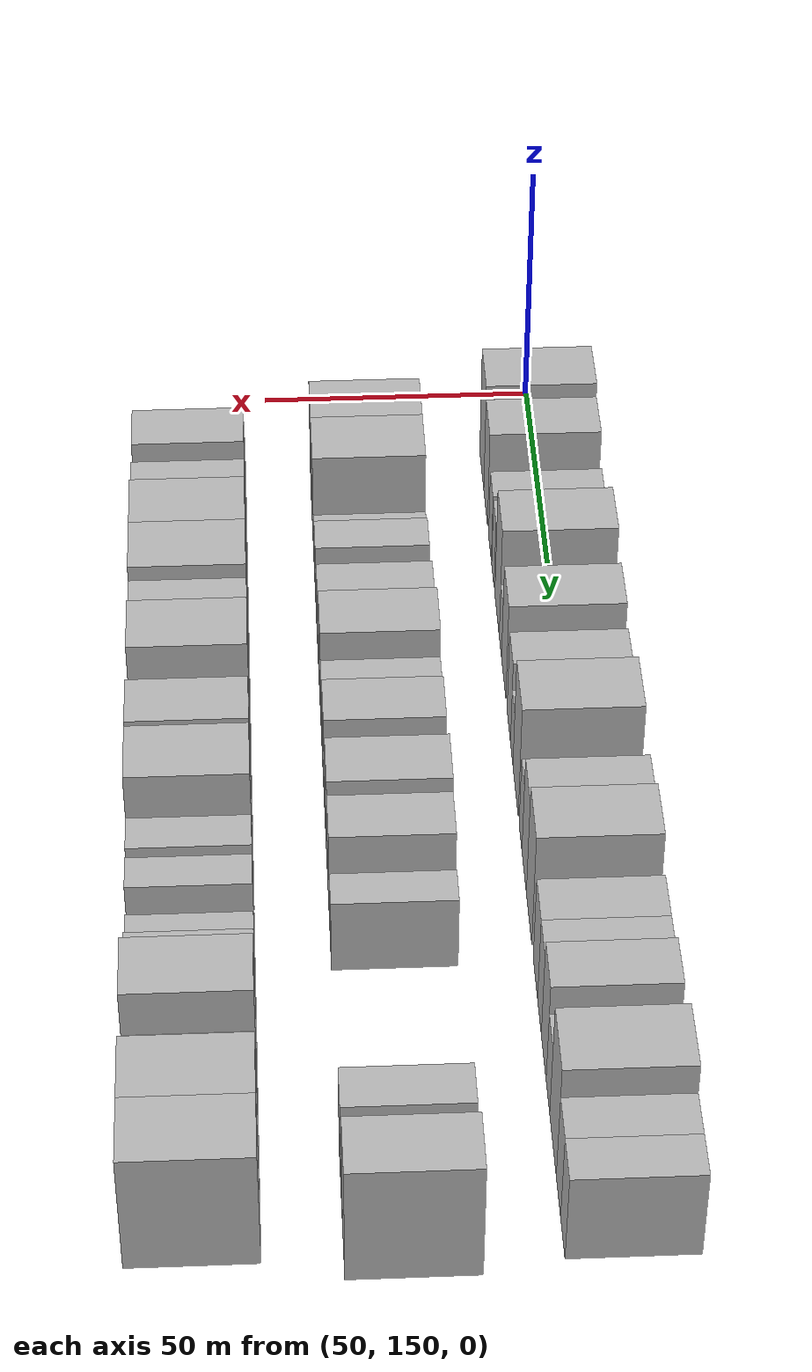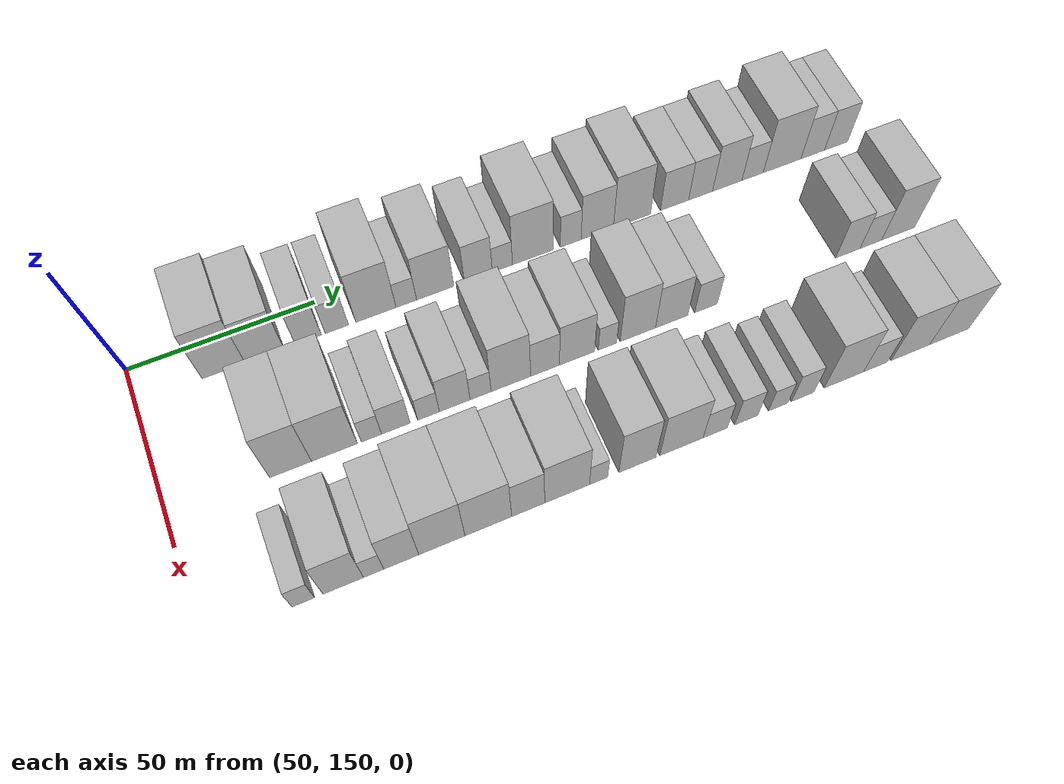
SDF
<sdf version="1.6">
 <world name="default">
  <model name="building_58">
   <static>1</static>
   <pose>50.0000 172.9131 0 0.000000 0.000000 0.000000</pose>
   <link name="link">
    <pose>0 0 12.00 0 0 0</pose>
    <collision name="collision"><geometry><box><size>20.0000 11.2285 24.0000</size></box></geometry></collision>
    <visual name="visual">
     <cast_shadows>0</cast_shadows>
     <geometry><box><size>20.0000 11.2285 24.0000</size></box></geometry>
     <material>
      <script>
       <uri>model://HANNAS_wall/materials/scripts</uri>
       <uri>model://HANNAS_wall/materials/textures</uri>
       <name>vrc/HANNAS_wall</name>
      </script>
     </material>
    </visual>
   </link>
  </model>
  <model name="building_59">
   <static>1</static>
   <pose>50.0000 183.6783 0 0.000000 0.000000 0.000000</pose>
   <link name="link">
    <pose>0 0 10.50 0 0 0</pose>
    <collision name="collision"><geometry><box><size>20.0000 10.3019 21.0000</size></box></geometry></collision>
    <visual name="visual">
     <cast_shadows>0</cast_shadows>
     <geometry><box><size>20.0000 10.3019 21.0000</size></box></geometry>
     <material>
      <script>
       <uri>model://HANNAS_wall/materials/scripts</uri>
       <uri>model://HANNAS_wall/materials/textures</uri>
       <name>vrc/HANNAS_wall</name>
      </script>
     </material>
    </visual>
   </link>
  </model>
  <model name="building_60">
   <static>1</static>
   <pose>50.0000 195.3477 0 0.000000 0.000000 0.000000</pose>
   <link name="link">
    <pose>0 0 7.50 0 0 0</pose>
    <collision name="collision"><geometry><box><size>20.0000 7.0370 15.0000</size></box></geometry></collision>
    <visual name="visual">
     <cast_shadows>0</cast_shadows>
     <geometry><box><size>20.0000 7.0370 15.0000</size></box></geometry>
     <material>
      <script>
       <uri>model://HANNAS_wall/materials/scripts</uri>
       <uri>model://HANNAS_wall/materials/textures</uri>
       <name>vrc/HANNAS_wall</name>
      </script>
     </material>
    </visual>
   </link>
  </model>
  <model name="building_61">
   <static>1</static>
   <pose>50.0000 203.0328 0 0.000000 0.000000 0.000000</pose>
   <link name="link">
    <pose>0 0 7.50 0 0 0</pose>
    <collision name="collision"><geometry><box><size>20.0000 6.3333 15.0000</size></box></geometry></collision>
    <visual name="visual">
     <cast_shadows>0</cast_shadows>
     <geometry><box><size>20.0000 6.3333 15.0000</size></box></geometry>
     <material>
      <script>
       <uri>model://HANNAS_wall/materials/scripts</uri>
       <uri>model://HANNAS_wall/materials/textures</uri>
       <name>vrc/HANNAS_wall</name>
      </script>
     </material>
    </visual>
   </link>
  </model>
  <model name="building_62">
   <static>1</static>
   <pose>50.0000 213.7313 0 0.000000 0.000000 0.000000</pose>
   <link name="link">
    <pose>0 0 12.00 0 0 0</pose>
    <collision name="collision"><geometry><box><size>20.0000 11.0636 24.0000</size></box></geometry></collision>
    <visual name="visual">
     <cast_shadows>0</cast_shadows>
     <geometry><box><size>20.0000 11.0636 24.0000</size></box></geometry>
     <material>
      <script>
       <uri>model://HANNAS_wall/materials/scripts</uri>
       <uri>model://HANNAS_wall/materials/textures</uri>
       <name>vrc/HANNAS_wall</name>
      </script>
     </material>
    </visual>
   </link>
  </model>
  <model name="building_63">
   <static>1</static>
   <pose>50.0000 222.1145 0 0.000000 0.000000 0.000000</pose>
   <link name="link">
    <pose>0 0 6.00 0 0 0</pose>
    <collision name="collision"><geometry><box><size>20.0000 5.7027 12.0000</size></box></geometry></collision>
    <visual name="visual">
     <cast_shadows>0</cast_shadows>
     <geometry><box><size>20.0000 5.7027 12.0000</size></box></geometry>
     <material>
      <script>
       <uri>model://HANNAS_wall/materials/scripts</uri>
       <uri>model://HANNAS_wall/materials/textures</uri>
       <name>vrc/HANNAS_wall</name>
      </script>
     </material>
    </visual>
   </link>
  </model>
  <model name="building_64">
   <static>1</static>
   <pose>50.0000 230.1820 0 0.000000 0.000000 0.000000</pose>
   <link name="link">
    <pose>0 0 10.50 0 0 0</pose>
    <collision name="collision"><geometry><box><size>20.0000 10.4323 21.0000</size></box></geometry></collision>
    <visual name="visual">
     <cast_shadows>0</cast_shadows>
     <geometry><box><size>20.0000 10.4323 21.0000</size></box></geometry>
     <material>
      <script>
       <uri>model://HANNAS_wall/materials/scripts</uri>
       <uri>model://HANNAS_wall/materials/textures</uri>
       <name>vrc/HANNAS_wall</name>
      </script>
     </material>
    </visual>
   </link>
  </model>
  <model name="building_65">
   <static>1</static>
   <pose>50.0000 242.3887 0 0.000000 0.000000 0.000000</pose>
   <link name="link">
    <pose>0 0 9.00 0 0 0</pose>
    <collision name="collision"><geometry><box><size>20.0000 7.9812 18.0000</size></box></geometry></collision>
    <visual name="visual">
     <cast_shadows>0</cast_shadows>
     <geometry><box><size>20.0000 7.9812 18.0000</size></box></geometry>
     <material>
      <script>
       <uri>model://HANNAS_wall/materials/scripts</uri>
       <uri>model://HANNAS_wall/materials/textures</uri>
       <name>vrc/HANNAS_wall</name>
      </script>
     </material>
    </visual>
   </link>
  </model>
  <model name="building_66">
   <static>1</static>
   <pose>50.0000 249.2571 0 0.000000 0.000000 0.000000</pose>
   <link name="link">
    <pose>0 0 6.00 0 0 0</pose>
    <collision name="collision"><geometry><box><size>20.0000 5.7558 12.0000</size></box></geometry></collision>
    <visual name="visual">
     <cast_shadows>0</cast_shadows>
     <geometry><box><size>20.0000 5.7558 12.0000</size></box></geometry>
     <material>
      <script>
       <uri>model://HANNAS_wall/materials/scripts</uri>
       <uri>model://HANNAS_wall/materials/textures</uri>
       <name>vrc/HANNAS_wall</name>
      </script>
     </material>
    </visual>
   </link>
  </model>
  <model name="building_67">
   <static>1</static>
   <pose>50.0000 258.0825 0 0.000000 0.000000 0.000000</pose>
   <link name="link">
    <pose>0 0 12.00 0 0 0</pose>
    <collision name="collision"><geometry><box><size>20.0000 11.8950 24.0000</size></box></geometry></collision>
    <visual name="visual">
     <cast_shadows>0</cast_shadows>
     <geometry><box><size>20.0000 11.8950 24.0000</size></box></geometry>
     <material>
      <script>
       <uri>model://HANNAS_wall/materials/scripts</uri>
       <uri>model://HANNAS_wall/materials/textures</uri>
       <name>vrc/HANNAS_wall</name>
      </script>
     </material>
    </visual>
   </link>
  </model>
  <model name="building_68">
   <static>1</static>
   <pose>50.0000 269.0869 0 0.000000 0.000000 0.000000</pose>
   <link name="link">
    <pose>0 0 7.50 0 0 0</pose>
    <collision name="collision"><geometry><box><size>20.0000 6.1139 15.0000</size></box></geometry></collision>
    <visual name="visual">
     <cast_shadows>0</cast_shadows>
     <geometry><box><size>20.0000 6.1139 15.0000</size></box></geometry>
     <material>
      <script>
       <uri>model://HANNAS_wall/materials/scripts</uri>
       <uri>model://HANNAS_wall/materials/textures</uri>
       <name>vrc/HANNAS_wall</name>
      </script>
     </material>
    </visual>
   </link>
  </model>
  <model name="building_69">
   <static>1</static>
   <pose>50.0000 276.9377 0 0.000000 0.000000 0.000000</pose>
   <link name="link">
    <pose>0 0 10.50 0 0 0</pose>
    <collision name="collision"><geometry><box><size>20.0000 9.5877 21.0000</size></box></geometry></collision>
    <visual name="visual">
     <cast_shadows>0</cast_shadows>
     <geometry><box><size>20.0000 9.5877 21.0000</size></box></geometry>
     <material>
      <script>
       <uri>model://HANNAS_wall/materials/scripts</uri>
       <uri>model://HANNAS_wall/materials/textures</uri>
       <name>vrc/HANNAS_wall</name>
      </script>
     </material>
    </visual>
   </link>
  </model>
  <model name="building_70">
   <static>1</static>
   <pose>50.0000 287.3163 0 0.000000 0.000000 0.000000</pose>
   <link name="link">
    <pose>0 0 12.00 0 0 0</pose>
    <collision name="collision"><geometry><box><size>20.0000 11.1694 24.0000</size></box></geometry></collision>
    <visual name="visual">
     <cast_shadows>0</cast_shadows>
     <geometry><box><size>20.0000 11.1694 24.0000</size></box></geometry>
     <material>
      <script>
       <uri>model://HANNAS_wall/materials/scripts</uri>
       <uri>model://HANNAS_wall/materials/textures</uri>
       <name>vrc/HANNAS_wall</name>
      </script>
     </material>
    </visual>
   </link>
  </model>
  <model name="building_71">
   <static>1</static>
   <pose>50.0000 300.2091 0 0.000000 0.000000 0.000000</pose>
   <link name="link">
    <pose>0 0 9.00 0 0 0</pose>
    <collision name="collision"><geometry><box><size>20.0000 8.6162 18.0000</size></box></geometry></collision>
    <visual name="visual">
     <cast_shadows>0</cast_shadows>
     <geometry><box><size>20.0000 8.6162 18.0000</size></box></geometry>
     <material>
      <script>
       <uri>model://HANNAS_wall/materials/scripts</uri>
       <uri>model://HANNAS_wall/materials/textures</uri>
       <name>vrc/HANNAS_wall</name>
      </script>
     </material>
    </visual>
   </link>
  </model>
  <model name="building_72">
   <static>1</static>
   <pose>50.0000 308.1991 0 0.000000 0.000000 0.000000</pose>
   <link name="link">
    <pose>0 0 9.00 0 0 0</pose>
    <collision name="collision"><geometry><box><size>20.0000 7.3640 18.0000</size></box></geometry></collision>
    <visual name="visual">
     <cast_shadows>0</cast_shadows>
     <geometry><box><size>20.0000 7.3640 18.0000</size></box></geometry>
     <material>
      <script>
       <uri>model://HANNAS_wall/materials/scripts</uri>
       <uri>model://HANNAS_wall/materials/textures</uri>
       <name>vrc/HANNAS_wall</name>
      </script>
     </material>
    </visual>
   </link>
  </model>
  <model name="building_73">
   <static>1</static>
   <pose>50.0000 316.4513 0 0.000000 0.000000 0.000000</pose>
   <link name="link">
    <pose>0 0 10.50 0 0 0</pose>
    <collision name="collision"><geometry><box><size>20.0000 9.1403 21.0000</size></box></geometry></collision>
    <visual name="visual">
     <cast_shadows>0</cast_shadows>
     <geometry><box><size>20.0000 9.1403 21.0000</size></box></geometry>
     <material>
      <script>
       <uri>model://HANNAS_wall/materials/scripts</uri>
       <uri>model://HANNAS_wall/materials/textures</uri>
       <name>vrc/HANNAS_wall</name>
      </script>
     </material>
    </visual>
   </link>
  </model>
  <model name="building_74">
   <static>1</static>
   <pose>50.0000 324.3762 0 0.000000 0.000000 0.000000</pose>
   <link name="link">
    <pose>0 0 7.50 0 0 0</pose>
    <collision name="collision"><geometry><box><size>20.0000 6.7095 15.0000</size></box></geometry></collision>
    <visual name="visual">
     <cast_shadows>0</cast_shadows>
     <geometry><box><size>20.0000 6.7095 15.0000</size></box></geometry>
     <material>
      <script>
       <uri>model://HANNAS_wall/materials/scripts</uri>
       <uri>model://HANNAS_wall/materials/textures</uri>
       <name>vrc/HANNAS_wall</name>
      </script>
     </material>
    </visual>
   </link>
  </model>
  <model name="building_75">
   <static>1</static>
   <pose>50.0000 333.7004 0 0.000000 0.000000 0.000000</pose>
   <link name="link">
    <pose>0 0 12.00 0 0 0</pose>
    <collision name="collision"><geometry><box><size>20.0000 11.9389 24.0000</size></box></geometry></collision>
    <visual name="visual">
     <cast_shadows>0</cast_shadows>
     <geometry><box><size>20.0000 11.9389 24.0000</size></box></geometry>
     <material>
      <script>
       <uri>model://HANNAS_wall/materials/scripts</uri>
       <uri>model://HANNAS_wall/materials/textures</uri>
       <name>vrc/HANNAS_wall</name>
      </script>
     </material>
    </visual>
   </link>
  </model>
  <model name="building_76">
   <static>1</static>
   <pose>50.0000 343.4634 0 0.000000 0.000000 0.000000</pose>
   <link name="link">
    <pose>0 0 9.00 0 0 0</pose>
    <collision name="collision"><geometry><box><size>20.0000 7.5872 18.0000</size></box></geometry></collision>
    <visual name="visual">
     <cast_shadows>0</cast_shadows>
     <geometry><box><size>20.0000 7.5872 18.0000</size></box></geometry>
     <material>
      <script>
       <uri>model://HANNAS_wall/materials/scripts</uri>
       <uri>model://HANNAS_wall/materials/textures</uri>
       <name>vrc/HANNAS_wall</name>
      </script>
     </material>
    </visual>
   </link>
  </model>
  <model name="building_77">
   <static>1</static>
   <pose>50.0000 351.0186 0 0.000000 0.000000 0.000000</pose>
   <link name="link">
    <pose>0 0 9.00 0 0 0</pose>
    <collision name="collision"><geometry><box><size>20.0000 7.5232 18.0000</size></box></geometry></collision>
    <visual name="visual">
     <cast_shadows>0</cast_shadows>
     <geometry><box><size>20.0000 7.5232 18.0000</size></box></geometry>
     <material>
      <script>
       <uri>model://HANNAS_wall/materials/scripts</uri>
       <uri>model://HANNAS_wall/materials/textures</uri>
       <name>vrc/HANNAS_wall</name>
      </script>
     </material>
    </visual>
   </link>
  </model>
  <model name="building_132">
   <static>1</static>
   <pose>82.0000 180.8640 0 0.000000 0.000000 0.000000</pose>
   <link name="link">
    <pose>0 0 12.00 0 0 0</pose>
    <collision name="collision"><geometry><box><size>20.0000 10.5958 24.0000</size></box></geometry></collision>
    <visual name="visual">
     <cast_shadows>0</cast_shadows>
     <geometry><box><size>20.0000 10.5958 24.0000</size></box></geometry>
     <material>
      <script>
       <uri>model://HANNAS_wall/materials/scripts</uri>
       <uri>model://HANNAS_wall/materials/textures</uri>
       <name>vrc/HANNAS_wall</name>
      </script>
     </material>
    </visual>
   </link>
  </model>
  <model name="building_133">
   <static>1</static>
   <pose>82.0000 192.0519 0 0.000000 0.000000 0.000000</pose>
   <link name="link">
    <pose>0 0 12.00 0 0 0</pose>
    <collision name="collision"><geometry><box><size>20.0000 11.7800 24.0000</size></box></geometry></collision>
    <visual name="visual">
     <cast_shadows>0</cast_shadows>
     <geometry><box><size>20.0000 11.7800 24.0000</size></box></geometry>
     <material>
      <script>
       <uri>model://HANNAS_wall/materials/scripts</uri>
       <uri>model://HANNAS_wall/materials/textures</uri>
       <name>vrc/HANNAS_wall</name>
      </script>
     </material>
    </visual>
   </link>
  </model>
  <model name="building_134">
   <static>1</static>
   <pose>82.0000 201.5853 0 0.000000 0.000000 0.000000</pose>
   <link name="link">
    <pose>0 0 6.00 0 0 0</pose>
    <collision name="collision"><geometry><box><size>20.0000 5.2868 12.0000</size></box></geometry></collision>
    <visual name="visual">
     <cast_shadows>0</cast_shadows>
     <geometry><box><size>20.0000 5.2868 12.0000</size></box></geometry>
     <material>
      <script>
       <uri>model://HANNAS_wall/materials/scripts</uri>
       <uri>model://HANNAS_wall/materials/textures</uri>
       <name>vrc/HANNAS_wall</name>
      </script>
     </material>
    </visual>
   </link>
  </model>
  <model name="building_135">
   <static>1</static>
   <pose>82.0000 207.9541 0 0.000000 0.000000 0.000000</pose>
   <link name="link">
    <pose>0 0 7.50 0 0 0</pose>
    <collision name="collision"><geometry><box><size>20.0000 7.4506 15.0000</size></box></geometry></collision>
    <visual name="visual">
     <cast_shadows>0</cast_shadows>
     <geometry><box><size>20.0000 7.4506 15.0000</size></box></geometry>
     <material>
      <script>
       <uri>model://HANNAS_wall/materials/scripts</uri>
       <uri>model://HANNAS_wall/materials/textures</uri>
       <name>vrc/HANNAS_wall</name>
      </script>
     </material>
    </visual>
   </link>
  </model>
  <model name="building_136">
   <static>1</static>
   <pose>82.0000 216.5511 0 0.000000 0.000000 0.000000</pose>
   <link name="link">
    <pose>0 0 6.00 0 0 0</pose>
    <collision name="collision"><geometry><box><size>20.0000 5.7436 12.0000</size></box></geometry></collision>
    <visual name="visual">
     <cast_shadows>0</cast_shadows>
     <geometry><box><size>20.0000 5.7436 12.0000</size></box></geometry>
     <material>
      <script>
       <uri>model://HANNAS_wall/materials/scripts</uri>
       <uri>model://HANNAS_wall/materials/textures</uri>
       <name>vrc/HANNAS_wall</name>
      </script>
     </material>
    </visual>
   </link>
  </model>
  <model name="building_137">
   <static>1</static>
   <pose>82.0000 223.5394 0 0.000000 0.000000 0.000000</pose>
   <link name="link">
    <pose>0 0 9.00 0 0 0</pose>
    <collision name="collision"><geometry><box><size>20.0000 8.2330 18.0000</size></box></geometry></collision>
    <visual name="visual">
     <cast_shadows>0</cast_shadows>
     <geometry><box><size>20.0000 8.2330 18.0000</size></box></geometry>
     <material>
      <script>
       <uri>model://HANNAS_wall/materials/scripts</uri>
       <uri>model://HANNAS_wall/materials/textures</uri>
       <name>vrc/HANNAS_wall</name>
      </script>
     </material>
    </visual>
   </link>
  </model>
  <model name="building_138">
   <static>1</static>
   <pose>82.0000 230.4822 0 0.000000 0.000000 0.000000</pose>
   <link name="link">
    <pose>0 0 6.00 0 0 0</pose>
    <collision name="collision"><geometry><box><size>20.0000 5.6526 12.0000</size></box></geometry></collision>
    <visual name="visual">
     <cast_shadows>0</cast_shadows>
     <geometry><box><size>20.0000 5.6526 12.0000</size></box></geometry>
     <material>
      <script>
       <uri>model://HANNAS_wall/materials/scripts</uri>
       <uri>model://HANNAS_wall/materials/textures</uri>
       <name>vrc/HANNAS_wall</name>
      </script>
     </material>
    </visual>
   </link>
  </model>
  <model name="building_139">
   <static>1</static>
   <pose>82.0000 238.6883 0 0.000000 0.000000 0.000000</pose>
   <link name="link">
    <pose>0 0 12.00 0 0 0</pose>
    <collision name="collision"><geometry><box><size>20.0000 10.7597 24.0000</size></box></geometry></collision>
    <visual name="visual">
     <cast_shadows>0</cast_shadows>
     <geometry><box><size>20.0000 10.7597 24.0000</size></box></geometry>
     <material>
      <script>
       <uri>model://HANNAS_wall/materials/scripts</uri>
       <uri>model://HANNAS_wall/materials/textures</uri>
       <name>vrc/HANNAS_wall</name>
      </script>
     </material>
    </visual>
   </link>
  </model>
  <model name="building_140">
   <static>1</static>
   <pose>82.0000 248.0522 0 0.000000 0.000000 0.000000</pose>
   <link name="link">
    <pose>0 0 9.00 0 0 0</pose>
    <collision name="collision"><geometry><box><size>20.0000 7.9680 18.0000</size></box></geometry></collision>
    <visual name="visual">
     <cast_shadows>0</cast_shadows>
     <geometry><box><size>20.0000 7.9680 18.0000</size></box></geometry>
     <material>
      <script>
       <uri>model://HANNAS_wall/materials/scripts</uri>
       <uri>model://HANNAS_wall/materials/textures</uri>
       <name>vrc/HANNAS_wall</name>
      </script>
     </material>
    </visual>
   </link>
  </model>
  <model name="building_141">
   <static>1</static>
   <pose>82.0000 256.9384 0 0.000000 0.000000 0.000000</pose>
   <link name="link">
    <pose>0 0 10.50 0 0 0</pose>
    <collision name="collision"><geometry><box><size>20.0000 9.8046 21.0000</size></box></geometry></collision>
    <visual name="visual">
     <cast_shadows>0</cast_shadows>
     <geometry><box><size>20.0000 9.8046 21.0000</size></box></geometry>
     <material>
      <script>
       <uri>model://HANNAS_wall/materials/scripts</uri>
       <uri>model://HANNAS_wall/materials/textures</uri>
       <name>vrc/HANNAS_wall</name>
      </script>
     </material>
    </visual>
   </link>
  </model>
  <model name="building_142">
   <static>1</static>
   <pose>82.0000 265.4273 0 0.000000 0.000000 0.000000</pose>
   <link name="link">
    <pose>0 0 6.00 0 0 0</pose>
    <collision name="collision"><geometry><box><size>20.0000 5.1731 12.0000</size></box></geometry></collision>
    <visual name="visual">
     <cast_shadows>0</cast_shadows>
     <geometry><box><size>20.0000 5.1731 12.0000</size></box></geometry>
     <material>
      <script>
       <uri>model://HANNAS_wall/materials/scripts</uri>
       <uri>model://HANNAS_wall/materials/textures</uri>
       <name>vrc/HANNAS_wall</name>
      </script>
     </material>
    </visual>
   </link>
  </model>
  <model name="building_143">
   <static>1</static>
   <pose>82.0000 274.0516 0 0.000000 0.000000 0.000000</pose>
   <link name="link">
    <pose>0 0 12.00 0 0 0</pose>
    <collision name="collision"><geometry><box><size>20.0000 10.0757 24.0000</size></box></geometry></collision>
    <visual name="visual">
     <cast_shadows>0</cast_shadows>
     <geometry><box><size>20.0000 10.0757 24.0000</size></box></geometry>
     <material>
      <script>
       <uri>model://HANNAS_wall/materials/scripts</uri>
       <uri>model://HANNAS_wall/materials/textures</uri>
       <name>vrc/HANNAS_wall</name>
      </script>
     </material>
    </visual>
   </link>
  </model>
  <model name="building_144">
   <static>1</static>
   <pose>82.0000 283.7586 0 0.000000 0.000000 0.000000</pose>
   <link name="link">
    <pose>0 0 10.50 0 0 0</pose>
    <collision name="collision"><geometry><box><size>20.0000 9.3383 21.0000</size></box></geometry></collision>
    <visual name="visual">
     <cast_shadows>0</cast_shadows>
     <geometry><box><size>20.0000 9.3383 21.0000</size></box></geometry>
     <material>
      <script>
       <uri>model://HANNAS_wall/materials/scripts</uri>
       <uri>model://HANNAS_wall/materials/textures</uri>
       <name>vrc/HANNAS_wall</name>
      </script>
     </material>
    </visual>
   </link>
  </model>
  <model name="building_145">
   <static>1</static>
   <pose>82.0000 293.7158 0 0.000000 0.000000 0.000000</pose>
   <link name="link">
    <pose>0 0 7.50 0 0 0</pose>
    <collision name="collision"><geometry><box><size>20.0000 6.5761 15.0000</size></box></geometry></collision>
    <visual name="visual">
     <cast_shadows>0</cast_shadows>
     <geometry><box><size>20.0000 6.5761 15.0000</size></box></geometry>
     <material>
      <script>
       <uri>model://HANNAS_wall/materials/scripts</uri>
       <uri>model://HANNAS_wall/materials/textures</uri>
       <name>vrc/HANNAS_wall</name>
      </script>
     </material>
    </visual>
   </link>
  </model>
  <model name="building_146">
   <static>1</static>
   <pose>82.0000 336.3327 0 0.000000 0.000000 0.000000</pose>
   <link name="link">
    <pose>0 0 9.00 0 0 0</pose>
    <collision name="collision"><geometry><box><size>20.0000 7.5526 18.0000</size></box></geometry></collision>
    <visual name="visual">
     <cast_shadows>0</cast_shadows>
     <geometry><box><size>20.0000 7.5526 18.0000</size></box></geometry>
     <material>
      <script>
       <uri>model://HANNAS_wall/materials/scripts</uri>
       <uri>model://HANNAS_wall/materials/textures</uri>
       <name>vrc/HANNAS_wall</name>
      </script>
     </material>
    </visual>
   </link>
  </model>
  <model name="building_147">
   <static>1</static>
   <pose>82.0000 343.4468 0 0.000000 0.000000 0.000000</pose>
   <link name="link">
    <pose>0 0 7.50 0 0 0</pose>
    <collision name="collision"><geometry><box><size>20.0000 6.6756 15.0000</size></box></geometry></collision>
    <visual name="visual">
     <cast_shadows>0</cast_shadows>
     <geometry><box><size>20.0000 6.6756 15.0000</size></box></geometry>
     <material>
      <script>
       <uri>model://HANNAS_wall/materials/scripts</uri>
       <uri>model://HANNAS_wall/materials/textures</uri>
       <name>vrc/HANNAS_wall</name>
      </script>
     </material>
    </visual>
   </link>
  </model>
  <model name="building_148">
   <static>1</static>
   <pose>82.0000 351.9427 0 0.000000 0.000000 0.000000</pose>
   <link name="link">
    <pose>0 0 12.00 0 0 0</pose>
    <collision name="collision"><geometry><box><size>20.0000 10.3162 24.0000</size></box></geometry></collision>
    <visual name="visual">
     <cast_shadows>0</cast_shadows>
     <geometry><box><size>20.0000 10.3162 24.0000</size></box></geometry>
     <material>
      <script>
       <uri>model://HANNAS_wall/materials/scripts</uri>
       <uri>model://HANNAS_wall/materials/textures</uri>
       <name>vrc/HANNAS_wall</name>
      </script>
     </material>
    </visual>
   </link>
  </model>
  <model name="building_207">
   <static>1</static>
   <pose>114.0000 174.1930 0 0.000000 0.000000 0.000000</pose>
   <link name="link">
    <pose>0 0 6.00 0 0 0</pose>
    <collision name="collision"><geometry><box><size>20.0000 5.4032 12.0000</size></box></geometry></collision>
    <visual name="visual">
     <cast_shadows>0</cast_shadows>
     <geometry><box><size>20.0000 5.4032 12.0000</size></box></geometry>
     <material>
      <script>
       <uri>model://HANNAS_wall/materials/scripts</uri>
       <uri>model://HANNAS_wall/materials/textures</uri>
       <name>vrc/HANNAS_wall</name>
      </script>
     </material>
    </visual>
   </link>
  </model>
  <model name="building_208">
   <static>1</static>
   <pose>114.0000 183.8179 0 0.000000 0.000000 0.000000</pose>
   <link name="link">
    <pose>0 0 10.50 0 0 0</pose>
    <collision name="collision"><geometry><box><size>20.0000 9.8467 21.0000</size></box></geometry></collision>
    <visual name="visual">
     <cast_shadows>0</cast_shadows>
     <geometry><box><size>20.0000 9.8467 21.0000</size></box></geometry>
     <material>
      <script>
       <uri>model://HANNAS_wall/materials/scripts</uri>
       <uri>model://HANNAS_wall/materials/textures</uri>
       <name>vrc/HANNAS_wall</name>
      </script>
     </material>
    </visual>
   </link>
  </model>
  <model name="building_209">
   <static>1</static>
   <pose>114.0000 191.2438 0 0.000000 0.000000 0.000000</pose>
   <link name="link">
    <pose>0 0 6.00 0 0 0</pose>
    <collision name="collision"><geometry><box><size>20.0000 5.0050 12.0000</size></box></geometry></collision>
    <visual name="visual">
     <cast_shadows>0</cast_shadows>
     <geometry><box><size>20.0000 5.0050 12.0000</size></box></geometry>
     <material>
      <script>
       <uri>model://HANNAS_wall/materials/scripts</uri>
       <uri>model://HANNAS_wall/materials/textures</uri>
       <name>vrc/HANNAS_wall</name>
      </script>
     </material>
    </visual>
   </link>
  </model>
  <model name="building_210">
   <static>1</static>
   <pose>114.0000 198.0638 0 0.000000 0.000000 0.000000</pose>
   <link name="link">
    <pose>0 0 10.50 0 0 0</pose>
    <collision name="collision"><geometry><box><size>20.0000 8.6350 21.0000</size></box></geometry></collision>
    <visual name="visual">
     <cast_shadows>0</cast_shadows>
     <geometry><box><size>20.0000 8.6350 21.0000</size></box></geometry>
     <material>
      <script>
       <uri>model://HANNAS_wall/materials/scripts</uri>
       <uri>model://HANNAS_wall/materials/textures</uri>
       <name>vrc/HANNAS_wall</name>
      </script>
     </material>
    </visual>
   </link>
  </model>
  <model name="building_211">
   <static>1</static>
   <pose>114.0000 208.1645 0 0.000000 0.000000 0.000000</pose>
   <link name="link">
    <pose>0 0 12.00 0 0 0</pose>
    <collision name="collision"><geometry><box><size>20.0000 11.5664 24.0000</size></box></geometry></collision>
    <visual name="visual">
     <cast_shadows>0</cast_shadows>
     <geometry><box><size>20.0000 11.5664 24.0000</size></box></geometry>
     <material>
      <script>
       <uri>model://HANNAS_wall/materials/scripts</uri>
       <uri>model://HANNAS_wall/materials/textures</uri>
       <name>vrc/HANNAS_wall</name>
      </script>
     </material>
    </visual>
   </link>
  </model>
  <model name="building_212">
   <static>1</static>
   <pose>114.0000 219.9144 0 0.000000 0.000000 0.000000</pose>
   <link name="link">
    <pose>0 0 12.00 0 0 0</pose>
    <collision name="collision"><geometry><box><size>20.0000 11.9335 24.0000</size></box></geometry></collision>
    <visual name="visual">
     <cast_shadows>0</cast_shadows>
     <geometry><box><size>20.0000 11.9335 24.0000</size></box></geometry>
     <material>
      <script>
       <uri>model://HANNAS_wall/materials/scripts</uri>
       <uri>model://HANNAS_wall/materials/textures</uri>
       <name>vrc/HANNAS_wall</name>
      </script>
     </material>
    </visual>
   </link>
  </model>
  <model name="building_213">
   <static>1</static>
   <pose>114.0000 230.1419 0 0.000000 0.000000 0.000000</pose>
   <link name="link">
    <pose>0 0 10.50 0 0 0</pose>
    <collision name="collision"><geometry><box><size>20.0000 8.5214 21.0000</size></box></geometry></collision>
    <visual name="visual">
     <cast_shadows>0</cast_shadows>
     <geometry><box><size>20.0000 8.5214 21.0000</size></box></geometry>
     <material>
      <script>
       <uri>model://HANNAS_wall/materials/scripts</uri>
       <uri>model://HANNAS_wall/materials/textures</uri>
       <name>vrc/HANNAS_wall</name>
      </script>
     </material>
    </visual>
   </link>
  </model>
  <model name="building_214">
   <static>1</static>
   <pose>114.0000 240.2702 0 0.000000 0.000000 0.000000</pose>
   <link name="link">
    <pose>0 0 12.00 0 0 0</pose>
    <collision name="collision"><geometry><box><size>20.0000 11.7352 24.0000</size></box></geometry></collision>
    <visual name="visual">
     <cast_shadows>0</cast_shadows>
     <geometry><box><size>20.0000 11.7352 24.0000</size></box></geometry>
     <material>
      <script>
       <uri>model://HANNAS_wall/materials/scripts</uri>
       <uri>model://HANNAS_wall/materials/textures</uri>
       <name>vrc/HANNAS_wall</name>
      </script>
     </material>
    </visual>
   </link>
  </model>
  <model name="building_215">
   <static>1</static>
   <pose>114.0000 248.5429 0 0.000000 0.000000 0.000000</pose>
   <link name="link">
    <pose>0 0 6.00 0 0 0</pose>
    <collision name="collision"><geometry><box><size>20.0000 4.8103 12.0000</size></box></geometry></collision>
    <visual name="visual">
     <cast_shadows>0</cast_shadows>
     <geometry><box><size>20.0000 4.8103 12.0000</size></box></geometry>
     <material>
      <script>
       <uri>model://HANNAS_wall/materials/scripts</uri>
       <uri>model://HANNAS_wall/materials/textures</uri>
       <name>vrc/HANNAS_wall</name>
      </script>
     </material>
    </visual>
   </link>
  </model>
  <model name="building_216">
   <static>1</static>
   <pose>114.0000 258.9433 0 0.000000 0.000000 0.000000</pose>
   <link name="link">
    <pose>0 0 12.00 0 0 0</pose>
    <collision name="collision"><geometry><box><size>20.0000 9.9906 24.0000</size></box></geometry></collision>
    <visual name="visual">
     <cast_shadows>0</cast_shadows>
     <geometry><box><size>20.0000 9.9906 24.0000</size></box></geometry>
     <material>
      <script>
       <uri>model://HANNAS_wall/materials/scripts</uri>
       <uri>model://HANNAS_wall/materials/textures</uri>
       <name>vrc/HANNAS_wall</name>
      </script>
     </material>
    </visual>
   </link>
  </model>
  <model name="building_217">
   <static>1</static>
   <pose>114.0000 270.8467 0 0.000000 0.000000 0.000000</pose>
   <link name="link">
    <pose>0 0 12.00 0 0 0</pose>
    <collision name="collision"><geometry><box><size>20.0000 11.8162 24.0000</size></box></geometry></collision>
    <visual name="visual">
     <cast_shadows>0</cast_shadows>
     <geometry><box><size>20.0000 11.8162 24.0000</size></box></geometry>
     <material>
      <script>
       <uri>model://HANNAS_wall/materials/scripts</uri>
       <uri>model://HANNAS_wall/materials/textures</uri>
       <name>vrc/HANNAS_wall</name>
      </script>
     </material>
    </visual>
   </link>
  </model>
  <model name="building_218">
   <static>1</static>
   <pose>114.0000 280.1374 0 0.000000 0.000000 0.000000</pose>
   <link name="link">
    <pose>0 0 7.50 0 0 0</pose>
    <collision name="collision"><geometry><box><size>20.0000 6.7651 15.0000</size></box></geometry></collision>
    <visual name="visual">
     <cast_shadows>0</cast_shadows>
     <geometry><box><size>20.0000 6.7651 15.0000</size></box></geometry>
     <material>
      <script>
       <uri>model://HANNAS_wall/materials/scripts</uri>
       <uri>model://HANNAS_wall/materials/textures</uri>
       <name>vrc/HANNAS_wall</name>
      </script>
     </material>
    </visual>
   </link>
  </model>
  <model name="building_219">
   <static>1</static>
   <pose>114.0000 288.7727 0 0.000000 0.000000 0.000000</pose>
   <link name="link">
    <pose>0 0 7.50 0 0 0</pose>
    <collision name="collision"><geometry><box><size>20.0000 6.5054 15.0000</size></box></geometry></collision>
    <visual name="visual">
     <cast_shadows>0</cast_shadows>
     <geometry><box><size>20.0000 6.5054 15.0000</size></box></geometry>
     <material>
      <script>
       <uri>model://HANNAS_wall/materials/scripts</uri>
       <uri>model://HANNAS_wall/materials/textures</uri>
       <name>vrc/HANNAS_wall</name>
      </script>
     </material>
    </visual>
   </link>
  </model>
  <model name="building_220">
   <static>1</static>
   <pose>114.0000 297.7680 0 0.000000 0.000000 0.000000</pose>
   <link name="link">
    <pose>0 0 6.00 0 0 0</pose>
    <collision name="collision"><geometry><box><size>20.0000 5.4853 12.0000</size></box></geometry></collision>
    <visual name="visual">
     <cast_shadows>0</cast_shadows>
     <geometry><box><size>20.0000 5.4853 12.0000</size></box></geometry>
     <material>
      <script>
       <uri>model://HANNAS_wall/materials/scripts</uri>
       <uri>model://HANNAS_wall/materials/textures</uri>
       <name>vrc/HANNAS_wall</name>
      </script>
     </material>
    </visual>
   </link>
  </model>
  <model name="building_221">
   <static>1</static>
   <pose>114.0000 304.7174 0 0.000000 0.000000 0.000000</pose>
   <link name="link">
    <pose>0 0 7.50 0 0 0</pose>
    <collision name="collision"><geometry><box><size>20.0000 6.4134 15.0000</size></box></geometry></collision>
    <visual name="visual">
     <cast_shadows>0</cast_shadows>
     <geometry><box><size>20.0000 6.4134 15.0000</size></box></geometry>
     <material>
      <script>
       <uri>model://HANNAS_wall/materials/scripts</uri>
       <uri>model://HANNAS_wall/materials/textures</uri>
       <name>vrc/HANNAS_wall</name>
      </script>
     </material>
    </visual>
   </link>
  </model>
  <model name="building_222">
   <static>1</static>
   <pose>114.0000 316.6228 0 0.000000 0.000000 0.000000</pose>
   <link name="link">
    <pose>0 0 12.00 0 0 0</pose>
    <collision name="collision"><geometry><box><size>20.0000 11.3973 24.0000</size></box></geometry></collision>
    <visual name="visual">
     <cast_shadows>0</cast_shadows>
     <geometry><box><size>20.0000 11.3973 24.0000</size></box></geometry>
     <material>
      <script>
       <uri>model://HANNAS_wall/materials/scripts</uri>
       <uri>model://HANNAS_wall/materials/textures</uri>
       <name>vrc/HANNAS_wall</name>
      </script>
     </material>
    </visual>
   </link>
  </model>
  <model name="building_223">
   <static>1</static>
   <pose>114.0000 325.8411 0 0.000000 0.000000 0.000000</pose>
   <link name="link">
    <pose>0 0 7.50 0 0 0</pose>
    <collision name="collision"><geometry><box><size>20.0000 7.0393 15.0000</size></box></geometry></collision>
    <visual name="visual">
     <cast_shadows>0</cast_shadows>
     <geometry><box><size>20.0000 7.0393 15.0000</size></box></geometry>
     <material>
      <script>
       <uri>model://HANNAS_wall/materials/scripts</uri>
       <uri>model://HANNAS_wall/materials/textures</uri>
       <name>vrc/HANNAS_wall</name>
      </script>
     </material>
    </visual>
   </link>
  </model>
  <model name="building_224">
   <static>1</static>
   <pose>114.0000 336.1165 0 0.000000 0.000000 0.000000</pose>
   <link name="link">
    <pose>0 0 12.00 0 0 0</pose>
    <collision name="collision"><geometry><box><size>20.0000 11.5115 24.0000</size></box></geometry></collision>
    <visual name="visual">
     <cast_shadows>0</cast_shadows>
     <geometry><box><size>20.0000 11.5115 24.0000</size></box></geometry>
     <material>
      <script>
       <uri>model://HANNAS_wall/materials/scripts</uri>
       <uri>model://HANNAS_wall/materials/textures</uri>
       <name>vrc/HANNAS_wall</name>
      </script>
     </material>
    </visual>
   </link>
  </model>
  <model name="building_225">
   <static>1</static>
   <pose>114.0000 347.7622 0 0.000000 0.000000 0.000000</pose>
   <link name="link">
    <pose>0 0 12.00 0 0 0</pose>
    <collision name="collision"><geometry><box><size>20.0000 11.7799 24.0000</size></box></geometry></collision>
    <visual name="visual">
     <cast_shadows>0</cast_shadows>
     <geometry><box><size>20.0000 11.7799 24.0000</size></box></geometry>
     <material>
      <script>
       <uri>model://HANNAS_wall/materials/scripts</uri>
       <uri>model://HANNAS_wall/materials/textures</uri>
       <name>vrc/HANNAS_wall</name>
      </script>
     </material>
    </visual>
   </link>
  </model>
 </world>
</sdf>
